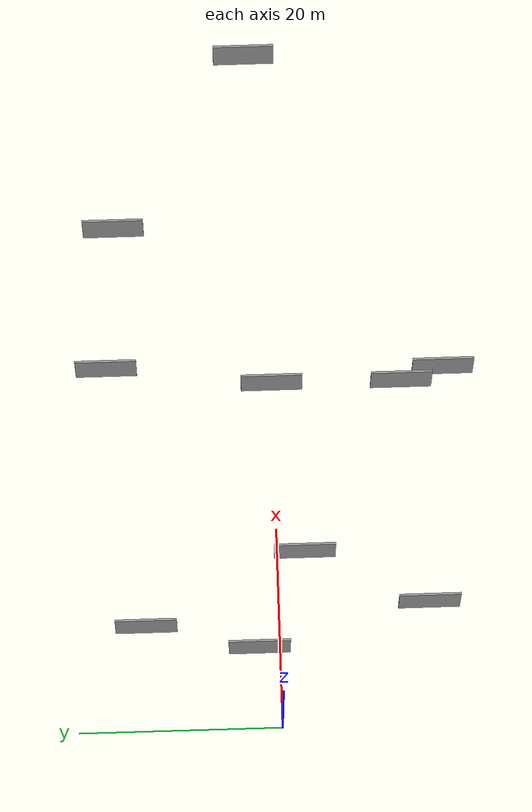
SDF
<sdf version="1.6">
 <world name="default">
  <scene>
   <sky><clouds><speed>12</speed></clouds></sky>
   <ambient>0.4 0.4 0.4 1</ambient>
   <background>0.7 0.7 0.7 1</background>
   <shadows>1</shadows>
  </scene>
  <gravity>0 0 -9.8066</gravity>
  <magnetic_field>6e-06 2.3e-05 -4.2e-05</magnetic_field>
  <physics default="0" name="default_physics" type="ode">
   <ode>
    <solver>
     <type>quick</type>
     <iters>10</iters>
     <sor>1.0</sor>
     <use_dynamic_moi_rescaling>0</use_dynamic_moi_rescaling>
    </solver>
    <constraints>
     <cfm>0</cfm>
     <erp>0.2</erp>
     <contact_max_correcting_vel>100</contact_max_correcting_vel>
     <contact_surface_layer>0.001</contact_surface_layer>
    </constraints>
   </ode>
   <max_step_size>0.004</max_step_size>
   <real_time_factor>1</real_time_factor>
   <real_time_update_rate>250</real_time_update_rate>
  </physics>
  <light name="sun" type="directional">
   <pose>0 0 10 0 0 0</pose>
   <diffuse>0.8 0.8 0.8 1</diffuse>
   <specular>0.2 0.2 0.2 1</specular>
   <attenuation>
    <range>1000</range>
    <constant>0.9</constant>
    <linear>0.01</linear>
    <quadratic>0.001</quadratic>
   </attenuation>
   <direction>-0.5 0.1 -0.9</direction>
  </light>
  <model name="grey_wall_1">
   <static>1</static>
   <pose>33.0246 0.1320 5.0 0.000000 0.000000 1.570796</pose>
   <link name="link">
    <pose>0 0 3.00 0 0 0</pose>
    <collision name="collision"><geometry><box><size>6.00 0.2 6.00</size></box></geometry></collision>
    <visual name="visual">
     <cast_shadows>0</cast_shadows>
     <geometry><box><size>6.00 0.2 6.00</size></box></geometry>
     <material>
      <script>
       <uri>model://grey_wall/materials/scripts</uri>
       <uri>model://grey_wall/materials/textures</uri>
       <name>vrc/grey_wall</name>
      </script>
     </material>
    </visual>
   </link>
  </model>
  <model name="grey_wall_2">
   <static>1</static>
   <pose>6.6823 2.0857 5.0 0.000000 0.000000 1.570796</pose>
   <link name="link">
    <pose>0 0 3.00 0 0 0</pose>
    <collision name="collision"><geometry><box><size>6.00 0.2 6.00</size></box></geometry></collision>
    <visual name="visual">
     <cast_shadows>0</cast_shadows>
     <geometry><box><size>6.00 0.2 6.00</size></box></geometry>
     <material>
      <script>
       <uri>model://grey_wall/materials/scripts</uri>
       <uri>model://grey_wall/materials/textures</uri>
       <name>vrc/grey_wall</name>
      </script>
     </material>
    </visual>
   </link>
  </model>
  <model name="grey_wall_3">
   <static>1</static>
   <pose>32.9663 -12.6000 5.0 0.000000 0.000000 1.570796</pose>
   <link name="link">
    <pose>0 0 3.00 0 0 0</pose>
    <collision name="collision"><geometry><box><size>6.00 0.2 6.00</size></box></geometry></collision>
    <visual name="visual">
     <cast_shadows>0</cast_shadows>
     <geometry><box><size>6.00 0.2 6.00</size></box></geometry>
     <material>
      <script>
       <uri>model://grey_wall/materials/scripts</uri>
       <uri>model://grey_wall/materials/textures</uri>
       <name>vrc/grey_wall</name>
      </script>
     </material>
    </visual>
   </link>
  </model>
  <model name="grey_wall_4">
   <static>1</static>
   <pose>10.7330 -14.5795 5.0 0.000000 0.000000 1.570796</pose>
   <link name="link">
    <pose>0 0 3.00 0 0 0</pose>
    <collision name="collision"><geometry><box><size>6.00 0.2 6.00</size></box></geometry></collision>
    <visual name="visual">
     <cast_shadows>0</cast_shadows>
     <geometry><box><size>6.00 0.2 6.00</size></box></geometry>
     <material>
      <script>
       <uri>model://grey_wall/materials/scripts</uri>
       <uri>model://grey_wall/materials/textures</uri>
       <name>vrc/grey_wall</name>
      </script>
     </material>
    </visual>
   </link>
  </model>
  <model name="grey_wall_5">
   <static>1</static>
   <pose>66.6071 1.9165 5.0 0.000000 0.000000 1.570796</pose>
   <link name="link">
    <pose>0 0 3.00 0 0 0</pose>
    <collision name="collision"><geometry><box><size>6.00 0.2 6.00</size></box></geometry></collision>
    <visual name="visual">
     <cast_shadows>0</cast_shadows>
     <geometry><box><size>6.00 0.2 6.00</size></box></geometry>
     <material>
      <script>
       <uri>model://grey_wall/materials/scripts</uri>
       <uri>model://grey_wall/materials/textures</uri>
       <name>vrc/grey_wall</name>
      </script>
     </material>
    </visual>
   </link>
  </model>
  <model name="grey_wall_6">
   <static>1</static>
   <pose>9.0318 13.0609 5.0 0.000000 0.000000 1.570796</pose>
   <link name="link">
    <pose>0 0 3.00 0 0 0</pose>
    <collision name="collision"><geometry><box><size>6.00 0.2 6.00</size></box></geometry></collision>
    <visual name="visual">
     <cast_shadows>0</cast_shadows>
     <geometry><box><size>6.00 0.2 6.00</size></box></geometry>
     <material>
      <script>
       <uri>model://grey_wall/materials/scripts</uri>
       <uri>model://grey_wall/materials/textures</uri>
       <name>vrc/grey_wall</name>
      </script>
     </material>
    </visual>
   </link>
  </model>
  <model name="grey_wall_7">
   <static>1</static>
   <pose>34.8950 16.3557 5.0 0.000000 0.000000 1.570796</pose>
   <link name="link">
    <pose>0 0 3.00 0 0 0</pose>
    <collision name="collision"><geometry><box><size>6.00 0.2 6.00</size></box></geometry></collision>
    <visual name="visual">
     <cast_shadows>0</cast_shadows>
     <geometry><box><size>6.00 0.2 6.00</size></box></geometry>
     <material>
      <script>
       <uri>model://grey_wall/materials/scripts</uri>
       <uri>model://grey_wall/materials/textures</uri>
       <name>vrc/grey_wall</name>
      </script>
     </material>
    </visual>
   </link>
  </model>
  <model name="grey_wall_8">
   <static>1</static>
   <pose>16.0640 -2.5949 5.0 0.000000 0.000000 1.570796</pose>
   <link name="link">
    <pose>0 0 3.00 0 0 0</pose>
    <collision name="collision"><geometry><box><size>6.00 0.2 6.00</size></box></geometry></collision>
    <visual name="visual">
     <cast_shadows>0</cast_shadows>
     <geometry><box><size>6.00 0.2 6.00</size></box></geometry>
     <material>
      <script>
       <uri>model://grey_wall/materials/scripts</uri>
       <uri>model://grey_wall/materials/textures</uri>
       <name>vrc/grey_wall</name>
      </script>
     </material>
    </visual>
   </link>
  </model>
  <model name="grey_wall_9">
   <static>1</static>
   <pose>49.1193 15.3119 5.0 0.000000 0.000000 1.570796</pose>
   <link name="link">
    <pose>0 0 3.00 0 0 0</pose>
    <collision name="collision"><geometry><box><size>6.00 0.2 6.00</size></box></geometry></collision>
    <visual name="visual">
     <cast_shadows>0</cast_shadows>
     <geometry><box><size>6.00 0.2 6.00</size></box></geometry>
     <material>
      <script>
       <uri>model://grey_wall/materials/scripts</uri>
       <uri>model://grey_wall/materials/textures</uri>
       <name>vrc/grey_wall</name>
      </script>
     </material>
    </visual>
   </link>
  </model>
  <model name="grey_wall_10">
   <static>1</static>
   <pose>34.2027 -16.7305 5.0 0.000000 0.000000 1.570796</pose>
   <link name="link">
    <pose>0 0 3.00 0 0 0</pose>
    <collision name="collision"><geometry><box><size>6.00 0.2 6.00</size></box></geometry></collision>
    <visual name="visual">
     <cast_shadows>0</cast_shadows>
     <geometry><box><size>6.00 0.2 6.00</size></box></geometry>
     <material>
      <script>
       <uri>model://grey_wall/materials/scripts</uri>
       <uri>model://grey_wall/materials/textures</uri>
       <name>vrc/grey_wall</name>
      </script>
     </material>
    </visual>
   </link>
  </model>
 </world>
</sdf>
